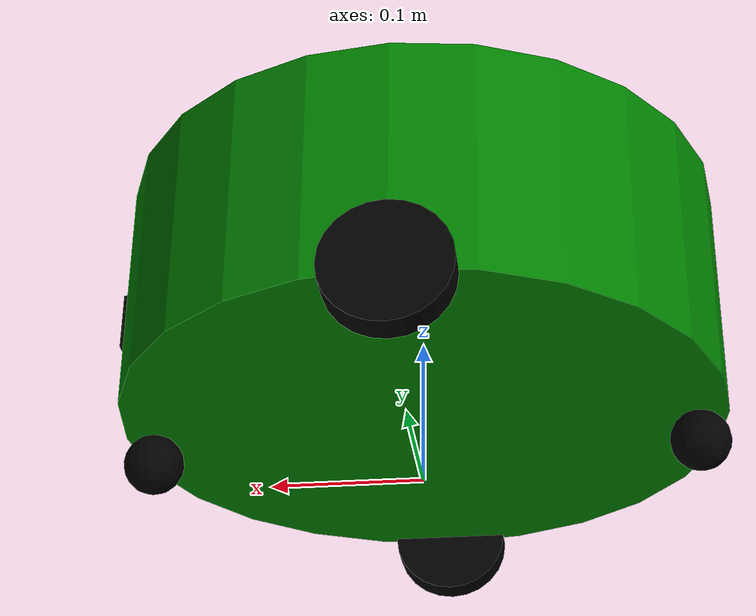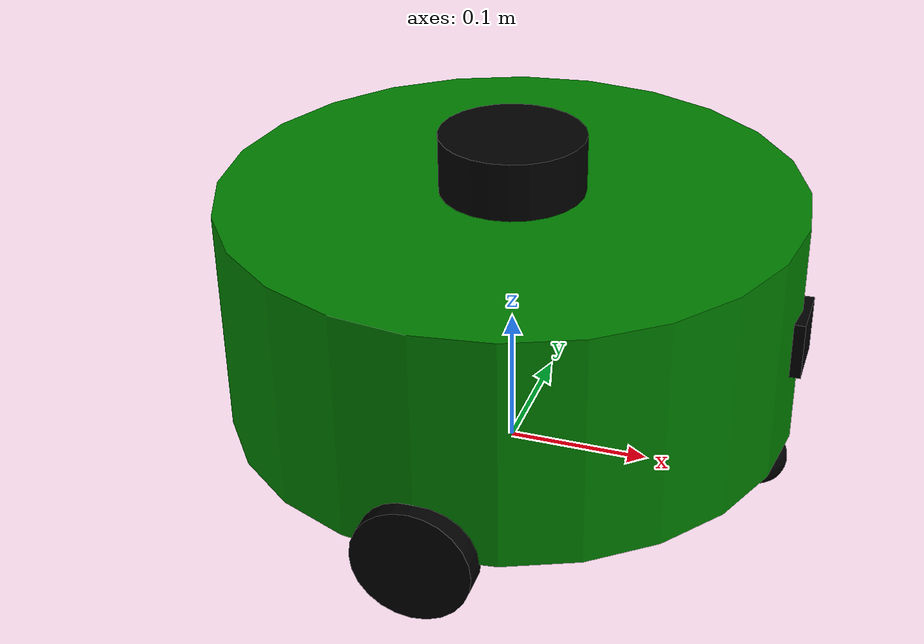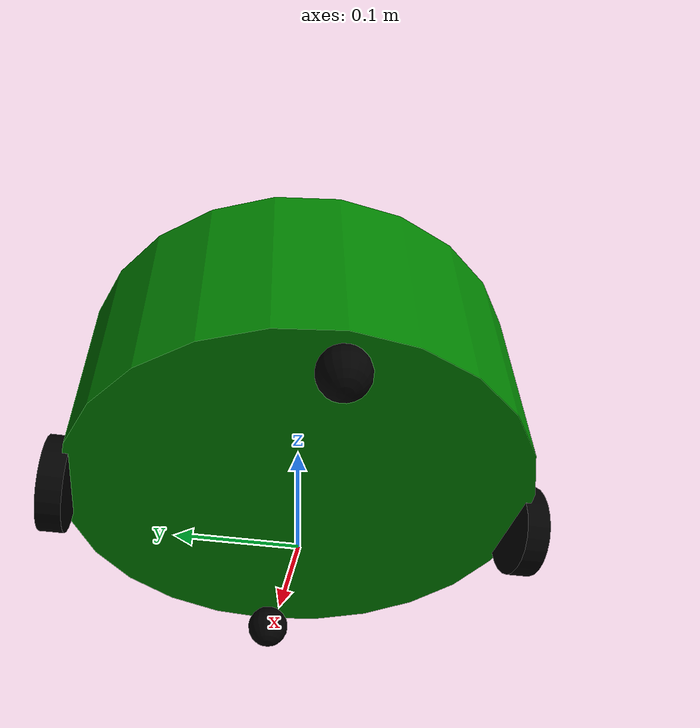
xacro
<?xml version="1.0"?>
<robot xmlns:xacro="http://www.ros.org/wiki/xacro" name="kamibot">

    <xacro:property name="base_mass" value="1" />
    <xacro:property name="base_radius" value="0.20" />  <!-- 底盘半径 -->
    <xacro:property name="base_height" value="0.16" />  <!-- 底盘高度 -->

    <xacro:property name="wheel_mass" value="0.2" />
    <xacro:property name="wheel_radius" value="0.04" />  <!-- 轮子半径 -->
    <xacro:property name="wheel_length" value="0.02" /> <!-- 轮子厚度 -->
    <xacro:property name="wheel_joint_y" value="${base_radius}" />
    <xacro:property name="wheel_joint_z" value="${-base_height/2}" />

    <xacro:property name="base_groud_height" value="${wheel_radius}" />  <!-- 底盘离地高度 -->

    <xacro:property name="caster_mass" value="0.1" />
    <xacro:property name="caster_radius" value="${wheel_radius/2}" />
    <xacro:property name="caster_joint_x" value="${base_radius-caster_radius}" />
    <xacro:property name="caster_joint_z" value="${-(base_height/2+caster_radius)}" />

    <xacro:property name="lidar_mass" value="0.1" />
    <xacro:property name="lidar_radius" value="${base_radius/4}" />
    <xacro:property name="lidar_height" value="${base_height/4}" />
    <xacro:property name="lidar_joint_z" value="${base_height/2+lidar_height/2}" />

    <xacro:property name="camera_joint_x" value="${base_radius}" />

    <!-- 生成底座 -->
    <xacro:include filename="kamibot_base.xacro" />
    <xacro:base_macro
        name="base_link"
        m="${base_mass}"
        r="${base_radius}"
        h="${base_height}"
        g="${base_groud_height}"
        color="Gazebo/Turquoise"
    />

    <!-- 生成左右轮 -->
    <xacro:include filename="kamibot_wheel.xacro" />
    <xacro:drive_wheel_macro
        name="left_wheel"
        m="${wheel_mass}"
        r="${wheel_radius}"
        h="${wheel_length}"
        color="Gazebo/TurquoiseGlow"
    />

    <xacro:drive_wheel_macro
        name="right_wheel"
        m="${wheel_mass}"
        r="${wheel_radius}"
        h="${wheel_length}"
        color="Gazebo/TurquoiseGlow"
    />

    <!-- 生成前后万向轮 -->
    <xacro:caster_macro
        name="front_caster"
        m="${caster_mass}"
        r="${caster_radius}"
        color="Gazebo/TurquoiseGlow"
    />
    <xacro:caster_macro
        name="back_caster"
        m="${caster_mass}"
        r="${caster_radius}"
        color="Gazebo/TurquoiseGlow"
    />

    <!-- 生成雷达 -->
    <xacro:include filename="sensors/lidar_gazebo.xacro" />
    <xacro:lidar
        name="kamibot_lidar"
        m="${lidar_mass}"
        r="${lidar_radius}"
        h="${lidar_height}"
        color="Gazebo/RedGlow"
    />

    <!-- 生成相机 -->
    <xacro:include filename="sensors/camera_gazebo.xacro" />
    <xacro:usb_camera
        name="kamibot_camera"
        color="Gazebo/RedGlow"
    />

    <!-- 左轮关节 -->
    <joint name="left_wheel_joint" type="continuous">
        <parent link="base_link" />
        <child link="left_wheel" />
        <origin xyz="0 ${wheel_joint_y} ${wheel_joint_z}" />
        <axis xyz="0 1 0" />
    </joint>
    <xacro:transmission_macro joint="left_wheel_joint" />

    <!-- 右轮关节 -->
    <joint name="right_wheel_joint" type="continuous">
        <parent link="base_link" />
        <child link="right_wheel" />
        <origin xyz="0 ${-wheel_joint_y} ${wheel_joint_z}" />
        <axis xyz="0 1 0" />
    </joint>
    <xacro:transmission_macro joint="right_wheel_joint" />

    <!-- 前万向轮关节（自由旋转） -->
    <joint name="front_caster_joint" type="fixed">
        <parent link="base_link" />
        <child link="front_caster" />
        <origin xyz="${caster_joint_x} 0 ${caster_joint_z}" />
    </joint>

    <!-- 后万向轮关节（自由旋转） -->
    <joint name="back_caster_joint" type="fixed">
        <parent link="base_link" />
        <child link="back_caster" />
        <origin xyz="${-caster_joint_x} 0 ${caster_joint_z}" />
    </joint>

    <!-- 雷达关节 -->
    <joint name="lidar_joint" type="fixed">
        <parent link="base_link" />
        <child link="kamibot_lidar" />
        <origin xyz="0 0 ${lidar_joint_z}" />
    </joint>

    <!-- 相机关节 -->
    <joint name="camera_joint" type="fixed">
        <parent link="base_link" />
        <child link="kamibot_camera" />
        <origin xyz="${camera_joint_x} 0 0" />
    </joint>

    <!-- 差速驱动控制器插件 -->
    <gazebo>
        <plugin name="differential_drive_controller"
                filename="libgazebo_ros_diff_drive.so">
            <update_rate>30</update_rate>
            <left_joint>left_wheel_joint</left_joint>
            <right_joint>right_wheel_joint</right_joint>
            <wheel_separation>${wheel_joint_y*2}</wheel_separation>
            <wheel_diameter>${2*wheel_radius}</wheel_diameter>
            <max_wheel_torque>20</max_wheel_torque>
            <max_wheel_acceleration>1.0</max_wheel_acceleration>
            <command_topic>cmd_vel</command_topic>
            <publish_odom>true</publish_odom>
            <publish_odom_tf>true</publish_odom_tf>
            <publish_wheel_tf>true</publish_wheel_tf>
            <odometry_topic>odom</odometry_topic> <!-- 里程计话题名称 -->
            <odometry_frame>odom</odometry_frame> <!-- 里程计坐标系名称 -->
            <robot_base_frame>base_footprint</robot_base_frame> <!-- base坐标系名称 -->
            <odometry_source>1</odometry_source> <!-- 1 使用轮子编码器的模拟数据 -->
        </plugin>
    </gazebo>
</robot>

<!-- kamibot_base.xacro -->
<robot xmlns:xacro="http://www.ros.org/wiki/xacro">

    <xacro:include filename="kamibot_utils.xacro" />

    <!-- 圆柱形底盘 -->
    <xacro:macro name="base_macro" params="name m r h g color">
        <link name="base_footprint">
            <visual>
                <origin xyz="0 0 0" rpy="0 0 0" />
                <geometry>
                    <box size="0.001 0.001 0.001" />
                </geometry>
            </visual>
        </link>
        <gazebo reference="base_footprint">
            <turnGravityOff>false</turnGravityOff>
        </gazebo>

        <joint name="base_footprint_joint" type="fixed">
            <origin xyz="0 0 ${h/2+g}" rpy="0 0 0" />
            <parent link="base_footprint"/>
            <child link="${name}" />
        </joint>

        <link name="${name}">
            <visual>
                <origin xyz=" 0 0 0" rpy="0 0 0" />
                <geometry>
                    <cylinder length="${h}" radius="${r}"/>
                </geometry>
                <material name="green">
                    <color rgba="0 0.5 0 1"/>
                </material>
            </visual>
            <collision>
                <origin xyz=" 0 0 0" rpy="0 0 0" />
                <geometry>
                    <cylinder length="${h}" radius="${r}"/>
                </geometry>
            </collision>
            <xacro:cylinder_inertial_matrix m="${m}" r="${r}" h="${h}" />
        </link>

        <gazebo reference="${name}">
            <material>${color}</material>
        </gazebo>
    </xacro:macro>
</robot>

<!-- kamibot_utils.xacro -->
<robot xmlns:xacro="http://www.ros.org/wiki/xacro">

    <xacro:macro name="sphere_inertial_matrix" params="m r">
        <inertial>
            <mass value="${m}" />
            <inertia ixx="${2*m*r*r/5}" ixy="0" ixz="0"
                iyy="${2*m*r*r/5}" iyz="0"
                izz="${2*m*r*r/5}" />
        </inertial>
    </xacro:macro>

    <xacro:macro name="cylinder_inertial_matrix" params="m r h">
        <inertial>
            <mass value="${m}" />
            <inertia ixx="${m*(3*r*r+h*h)/12}" ixy = "0" ixz = "0"
                iyy="${m*(3*r*r+h*h)/12}" iyz = "0"
                izz="${m*r*r/2}" />
        </inertial>
    </xacro:macro>
</robot>

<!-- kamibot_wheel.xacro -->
<robot xmlns:xacro="http://www.ros.org/wiki/xacro">

    <xacro:include filename="kamibot_utils.xacro" />

    <!-- 驱动轮宏 -->
    <xacro:macro name="drive_wheel_macro" params="name m r h color">
        <link name="${name}">
            <visual>
                <geometry>
                    <cylinder radius="${r}" length="${h}" />
                </geometry>
                <material name="black">
                    <color rgba="0 0 0 1"/>
                </material>
                <origin rpy="${pi/2} 0 0" xyz="0 0 0" /> <!--旋转90度-->
            </visual>
            <collision>
                <geometry>
                    <cylinder radius="${r}" length="${h}" />
                </geometry>
                <origin rpy="${pi/2} 0 0" xyz="0 0 0" />
            </collision>

            <xacro:cylinder_inertial_matrix m="${m}" r="${r}" h="${h}" />
        </link>

        <gazebo reference="${name}">
            <material>${color}</material>
            <mu1>100000.0</mu1>
            <mu2>100000.0</mu2>
        </gazebo>
    </xacro:macro>

    <!-- 添加传动系统 -->
    <xacro:macro name="transmission_macro" params="joint">
        <transmission name="${joint}_trans">
            <type>transmission_interface/SimpleTransmission</type>
            <joint name="${joint}" >
                <hardwareInterface>hardware_interface/VelocityJointInterface</hardwareInterface>
            </joint>
            <actuator name="${joint}_motor">
                <hardwareInterface>hardware_interface/VelocityJointInterface</hardwareInterface>
                <mechanicalReduction>1</mechanicalReduction>
            </actuator>
        </transmission>
    </xacro:macro>

    <!-- 万向轮宏 -->
    <xacro:macro name="caster_macro" params="name m r color">
        <link name="${name}">
            <visual>
                <origin xyz="0 0 0" rpy="0 0 0"/>
                <geometry>
                    <sphere radius="${r}" />
                </geometry>
                <material name="black">
                    <color rgba="0 0 0 1"/>
                </material>
            </visual>
            <collision>
                <origin xyz="0 0 0" rpy="0 0 0"/>
                <geometry>
                    <sphere radius="${r}" />
                </geometry>
            </collision>
            <xacro:sphere_inertial_matrix  m="${m}" r="${r}" />
        </link>

        <gazebo reference="${name}">
            <material>${color}</material>
        </gazebo>
    </xacro:macro>
</robot>

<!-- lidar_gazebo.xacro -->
<robot xmlns:xacro="http://www.ros.org/wiki/xacro" name="lidar">

    <xacro:macro name="lidar" params="name:=lidar m r h color">
        <link name="${name}">
            <xacro:include filename="kamibot_utils.xacro" />
            <xacro:cylinder_inertial_matrix m="${m}" r="${r}" h="${h}" />

            <visual>
                <origin xyz=" 0 0 0 " rpy="0 0 0" />
                <geometry>
                    <cylinder length="${h}" radius="${r}"/>
                </geometry>
                <material name="black"/>
            </visual>

            <collision>
                <origin xyz="0.0 0.0 0.0" rpy="0 0 0" />
                <geometry>
                    <cylinder length="${h}" radius="${r}"/>
                </geometry>
            </collision>
        </link>
        <gazebo reference="${name}">
            <material>color</material>
        </gazebo>

        <gazebo reference="${name}">
            <sensor type="ray" name="kamibot_lidar">
                <update_rate>20</update_rate>
                <ray>
                    <scan>
                      <horizontal>
                        <samples>360</samples>
                        <resolution>1</resolution>
                        <min_angle>-3</min_angle>
                        <max_angle>3</max_angle>
                      </horizontal>
                    </scan>
                    <range>
                      <min>0.10</min>
                      <max>30.0</max>
                      <resolution>0.01</resolution>
                    </range>
                    <noise>
                      <type>gaussian</type>
                      <mean>0.0</mean>
                      <stddev>0.01</stddev>
                    </noise>
                </ray>
                <plugin name="kamibot_lidar_plugin" filename="libgazebo_ros_ray_sensor.so">
                    <ros>
                        <namespace>/</namespace>
                        <remapping>~/out:=scan</remapping>
                    </ros>
		            <output_type>sensor_msgs/LaserScan</output_type>
                </plugin>
            </sensor>
        </gazebo>

    </xacro:macro>
</robot>

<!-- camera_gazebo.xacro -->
<robot xmlns:xacro="http://www.ros.org/wiki/xacro" name="camera">

    <xacro:macro name="usb_camera" params="name:=camera prefix:=kamibot color">
        <link name="${name}">
            <inertial>
                <mass value="0.1" />
                <origin xyz="0 0 0" />
                <inertia ixx="0.01" ixy="0.0" ixz="0.0"
                         iyy="0.01" iyz="0.0"
                         izz="0.01" />
            </inertial>

            <visual>
                <origin xyz=" 0 0 0 " rpy="${-1.57} 0 0" />
                <geometry>
                    <box size="0.01 0.04 0.04" />
                </geometry>
                <material name="black"/>
            </visual>

            <collision>
                <origin xyz="0.0 0.0 0.0" rpy="${-1.57} 0 0" />
                <geometry>
                    <box size="0.01 0.04 0.04" />
                </geometry>
            </collision>
        </link>
        <gazebo reference="${name}">
            <material>color</material>
            <origin xyz="0 0 0" rpy="${-1.57} 0 0" />
        </gazebo>

        <gazebo reference="${name}">
            <sensor type="camera" name="kamibot_camera">
                <update_rate>30.0</update_rate>
                <camera name="head">
                    <horizontal_fov>1.3962634</horizontal_fov>
                    <image>
                        <width>1280</width>
                        <height>720</height>
                        <format>R8G8B8</format>
                    </image>
                    <clip>
                        <near>0.02</near>
                        <far>300</far>
                    </clip>
                    <noise>
                        <type>gaussian</type>
                        <mean>0.0</mean>
                        <stddev>0.007</stddev>
                    </noise>
                </camera>
                <plugin name="kamibot_camera_plugin" filename="libgazebo_ros_camera.so">
				    <ros>
				        <remapping>~/image_raw:=image_raw</remapping>
				        <remapping>~/camera_info:=camera_info</remapping>
				    </ros>
				    <camera_name>${prefix}</camera_name>
				    <frame_name>${name}</frame_name>
				    <hack_baseline>0.2</hack_baseline>
                </plugin>
            </sensor>
        </gazebo>

    </xacro:macro>
</robot>
